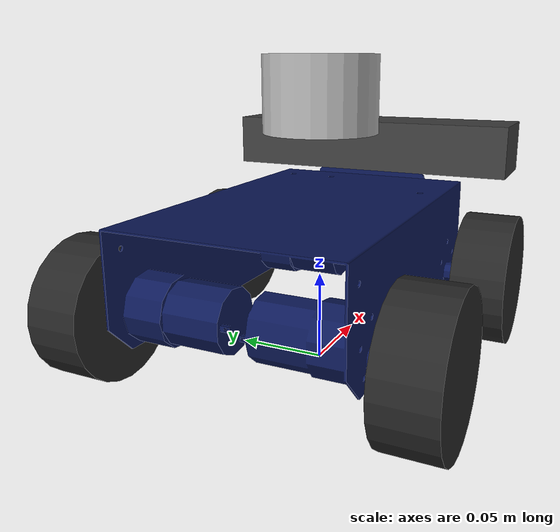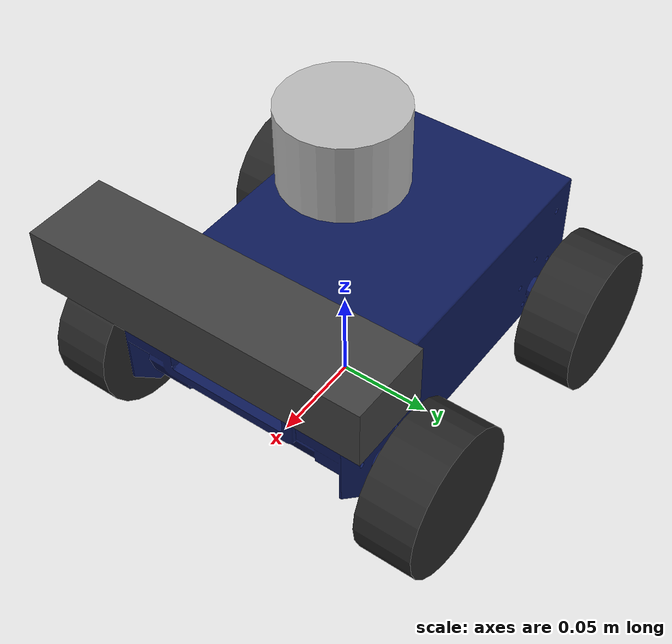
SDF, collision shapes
<sdf version='1.9'>
  <model name='axioma_v2'>

    <link name='base_link'>

      <inertial>
        <pose>0 0 0 0 -0 0</pose>
        <mass>5.0</mass>
        <inertia>
          <ixx>0.1135</ixx>
          <ixy>0</ixy>
          <ixz>0</ixz>
          <iyy>0.426</iyy>
          <iyz>0</iyz>
          <izz>0.5205</izz>
        </inertia>
      </inertial>
      <collision name='base_link_collision'>
        <pose>0 0 0 0 -0 0</pose>
        <geometry>
          <mesh>
            <scale>1 1 1</scale>
            <uri>model://axioma_v2/meshes/collision/chasis.dae</uri>
          </mesh>
        </geometry>
      </collision>
      <visual name='base_link_visual'>
        <pose>0 0 0 0 -0 0</pose>
        <geometry>
          <mesh>
            <scale>1 1 1</scale>
            <uri>model://axioma_v2/meshes/visual/chasis.stl</uri>
          </mesh>
        </geometry>
        <material>
          <diffuse>0.05 0.1 0.35 1</diffuse>
          <ambient>0.02 0.05 0.15 1</ambient>
          <specular>0.3 0.3 0.4 1</specular>
          <emissive>0 0 0 1</emissive>
        </material>
      </visual>
    </link>

    <!-- ==================== WHEEL 1 (front-left) ==================== -->
    <joint name='base_to_wheel1' type='revolute'>
      <pose relative_to='base_link'>0.06442 0.07385 0.04068 3.141516 -0 3.141516</pose>
      <parent>base_link</parent>
      <child>wheel_1</child>
      <axis>
        <xyz>0 1 0</xyz>
        <limit>
          <lower>-1e+16</lower>
          <upper>1e+16</upper>
        </limit>
      </axis>
    </joint>
    <link name='wheel_1'>
      <pose relative_to='base_to_wheel1'>0 0 0 0 -0 0</pose>
      <inertial>
        <pose>0 0 0 0 -0 0</pose>
        <mass>0.1</mass>
        <inertia>
          <ixx>0.0029</ixx>
          <ixy>0</ixy>
          <ixz>0</ixz>
          <iyy>0.0029</iyy>
          <iyz>0</iyz>
          <izz>0.0056</izz>
        </inertia>
      </inertial>
      <collision name='wheel_1_collision'>
        <pose>0 0.02 0 -1.5707 -0 0</pose>
        <geometry>
          <cylinder>
            <radius>0.0381</radius>
            <length>0.03</length>
          </cylinder>
        </geometry>
        <surface>
          <friction>
            <ode>
              <fdir1>0 0 1</fdir1>
              <mu>0.05</mu>
              <mu2>1.0</mu2>
              <slip1>0</slip1>
              <slip2>0</slip2>
            </ode>
          </friction>
          <contact>
            <ode>
              <soft_cfm>0</soft_cfm>
              <soft_erp>0.2</soft_erp>
              <kp>1e+13</kp>
              <kd>1</kd>
              <max_vel>0.01</max_vel>
              <min_depth>0.01</min_depth>
            </ode>
          </contact>
        </surface>
      </collision>
      <visual name='wheel_1_visual'>
        <pose>0 0 0 0 -0 0</pose>
        <geometry>
          <mesh>
            <scale>1 1 1</scale>
            <uri>model://axioma_v2/meshes/visual/llanta.stl</uri>
          </mesh>
        </geometry>
        <material>
          <diffuse>0.15 0.15 0.15 1</diffuse>
          <ambient>0.05 0.05 0.05 1</ambient>
          <specular>0.2 0.2 0.2 1</specular>
          <emissive>0 0 0 1</emissive>
        </material>
      </visual>
    </link>

    <!-- ==================== WHEEL 2 (rear-left) ==================== -->
    <joint name='base_to_wheel2' type='revolute'>
      <pose relative_to='base_link'>-0.071224 0.07385 0.04068 3.141516 -0 3.141516</pose>
      <parent>base_link</parent>
      <child>wheel_2</child>
      <axis>
        <xyz>0 1 0</xyz>
        <limit>
          <lower>-1e+16</lower>
          <upper>1e+16</upper>
        </limit>
      </axis>
    </joint>
    <link name='wheel_2'>
      <pose relative_to='base_to_wheel2'>0 0 0 0 -0 0</pose>
      <inertial>
        <pose>0 0 0 0 -0 0</pose>
        <mass>0.1</mass>
        <inertia>
          <ixx>0.0029</ixx>
          <ixy>0</ixy>
          <ixz>0</ixz>
          <iyy>0.0029</iyy>
          <iyz>0</iyz>
          <izz>0.0056</izz>
        </inertia>
      </inertial>
      <collision name='wheel_2_collision'>
        <pose>0 0.02 0 -1.5707 -0 0</pose>
        <geometry>
          <cylinder>
            <radius>0.0381</radius>
            <length>0.03</length>
          </cylinder>
        </geometry>
        <surface>
          <friction>
            <ode>
              <fdir1>0 0 1</fdir1>
              <mu>0.05</mu>
              <mu2>1.0</mu2>
              <slip1>0</slip1>
              <slip2>0</slip2>
            </ode>
          </friction>
          <contact>
            <ode>
              <soft_cfm>0</soft_cfm>
              <soft_erp>0.2</soft_erp>
              <kp>1e+13</kp>
              <kd>1</kd>
              <max_vel>0.01</max_vel>
              <min_depth>0.01</min_depth>
            </ode>
          </contact>
        </surface>
      </collision>
      <visual name='wheel_2_visual'>
        <pose>0 0 0 0 -0 0</pose>
        <geometry>
          <mesh>
            <scale>1 1 1</scale>
            <uri>model://axioma_v2/meshes/visual/llanta.stl</uri>
          </mesh>
        </geometry>
        <material>
          <diffuse>0.15 0.15 0.15 1</diffuse>
          <ambient>0.05 0.05 0.05 1</ambient>
          <specular>0.2 0.2 0.2 1</specular>
          <emissive>0 0 0 1</emissive>
        </material>
      </visual>
    </link>

    <!-- ==================== WHEEL 3 (rear-right) ==================== -->
    <joint name='base_to_wheel3' type='revolute'>
      <pose relative_to='base_link'>-0.071224 -0.0625 0.04068 0 0 3.141592</pose>
      <parent>base_link</parent>
      <child>wheel_3</child>
      <axis>
        <xyz>0 -1 0</xyz>
        <limit>
          <lower>-1e+16</lower>
          <upper>1e+16</upper>
        </limit>
      </axis>
    </joint>
    <link name='wheel_3'>
      <pose relative_to='base_to_wheel3'>0 0 0 0 -0 0</pose>
      <inertial>
        <pose>0 0 0 0 -0 0</pose>
        <mass>0.1</mass>
        <inertia>
          <ixx>0.0029</ixx>
          <ixy>0</ixy>
          <ixz>0</ixz>
          <iyy>0.0029</iyy>
          <iyz>0</iyz>
          <izz>0.0056</izz>
        </inertia>
      </inertial>
      <collision name='wheel_3_collision'>
        <pose>0 0.02 0 -1.5707 -0 0</pose>
        <geometry>
          <cylinder>
            <radius>0.0381</radius>
            <length>0.03</length>
          </cylinder>
        </geometry>
        <surface>
          <friction>
            <ode>
              <fdir1>0 0 1</fdir1>
              <mu>0.05</mu>
              <mu2>1.0</mu2>
              <slip1>0</slip1>
              <slip2>0</slip2>
            </ode>
          </friction>
          <contact>
            <ode>
              <soft_cfm>0</soft_cfm>
              <soft_erp>0.2</soft_erp>
              <kp>1e+13</kp>
              <kd>1</kd>
              <max_vel>0.01</max_vel>
              <min_depth>0.01</min_depth>
            </ode>
          </contact>
        </surface>
      </collision>
      <visual name='wheel_3_visual'>
        <pose>0 0 0 0 -0 0</pose>
        <geometry>
          <mesh>
            <scale>1 1 1</scale>
            <uri>model://axioma_v2/meshes/visual/llanta.stl</uri>
          </mesh>
        </geometry>
        <material>
          <diffuse>0.15 0.15 0.15 1</diffuse>
          <ambient>0.05 0.05 0.05 1</ambient>
          <specular>0.2 0.2 0.2 1</specular>
          <emissive>0 0 0 1</emissive>
        </material>
      </visual>
    </link>

    <!-- ==================== WHEEL 4 (front-right) ==================== -->
    <joint name='base_to_wheel4' type='revolute'>
      <pose relative_to='base_link'>0.064423 -0.0625 0.04068 0 0 3.141592</pose>
      <parent>base_link</parent>
      <child>wheel_4</child>
      <axis>
        <xyz>0 -1 0</xyz>
        <limit>
          <lower>-1e+16</lower>
          <upper>1e+16</upper>
        </limit>
      </axis>
    </joint>
    <link name='wheel_4'>
      <pose relative_to='base_to_wheel4'>0 0 0 0 -0 0</pose>
      <inertial>
        <pose>0 0 0 0 -0 0</pose>
        <mass>0.1</mass>
        <inertia>
          <ixx>0.0029</ixx>
          <ixy>0</ixy>
          <ixz>0</ixz>
          <iyy>0.0029</iyy>
          <iyz>0</iyz>
          <izz>0.0056</izz>
        </inertia>
      </inertial>
      <collision name='wheel_4_collision'>
        <pose>0 0.02 0 -1.5707 -0 0</pose>
        <geometry>
          <cylinder>
            <radius>0.0381</radius>
            <length>0.03</length>
          </cylinder>
        </geometry>
        <surface>
          <friction>
            <ode>
              <fdir1>0 0 1</fdir1>
              <mu>0.05</mu>
              <mu2>1.0</mu2>
              <slip1>0</slip1>
              <slip2>0</slip2>
            </ode>
          </friction>
          <contact>
            <ode>
              <soft_cfm>0</soft_cfm>
              <soft_erp>0.2</soft_erp>
              <kp>1e+13</kp>
              <kd>1</kd>
              <max_vel>0.01</max_vel>
              <min_depth>0.01</min_depth>
            </ode>
          </contact>
        </surface>
      </collision>
      <visual name='wheel_4_visual'>
        <pose>0 0 0 0 -0 0</pose>
        <geometry>
          <mesh>
            <scale>1 1 1</scale>
            <uri>model://axioma_v2/meshes/visual/llanta.stl</uri>
          </mesh>
        </geometry>
        <material>
          <diffuse>0.15 0.15 0.15 1</diffuse>
          <ambient>0.05 0.05 0.05 1</ambient>
          <specular>0.2 0.2 0.2 1</specular>
          <emissive>0 0 0 1</emissive>
        </material>
      </visual>
    </link>

    <!-- ==================== LIDAR SENSOR ==================== -->
    <link name="base_scan">
      <pose>0 0 0.15 0 0 0</pose>
      <inertial>
        <inertia>
          <ixx>0.001</ixx>
          <ixy>0.000</ixy>
          <ixz>0.000</ixz>
          <iyy>0.001</iyy>
          <iyz>0.000</iyz>
          <izz>0.001</izz>
        </inertia>
        <mass>0.125</mass>
      </inertial>
      <collision name="lidar_sensor_collision">
        <geometry>
          <cylinder>
            <radius>0.031</radius>
            <length>0.041</length>
          </cylinder>
        </geometry>
      </collision>
      <visual name="lidar_sensor_visual">
        <geometry>
          <cylinder>
            <radius>0.031</radius>
            <length>0.041</length>
          </cylinder>
        </geometry>
      </visual>
      <sensor name="ydlidar_x3_pro" type="gpu_lidar">
        <pose>0 0 0 0 0 0</pose>
        <always_on>true</always_on>
        <visualize>true</visualize>
        <update_rate>10</update_rate>
        <topic>scan</topic>
        <gz_frame_id>base_scan</gz_frame_id>
        <lidar>
          <scan>
            <horizontal>
              <samples>400</samples>
              <resolution>1</resolution>
              <min_angle>-3.141593</min_angle>
              <max_angle>3.125885</max_angle>
            </horizontal>
          </scan>
          <range>
            <min>0.120000</min>
            <max>8.0</max>
            <resolution>0.015000</resolution>
          </range>
          <noise>
            <type>gaussian</type>
            <mean>0.0</mean>
            <stddev>0.015</stddev>
          </noise>
        </lidar>
      </sensor>
    </link>

    <joint name="lidar_joint" type="fixed">
      <parent>base_link</parent>
      <child>base_scan</child>
    </joint>

    <!-- ==================== IMU ==================== -->

    <link name="imu_link">
      <pose>0 0 0.12 0 0 0</pose>
      <inertial>
        <mass>0.01</mass>
        <inertia>
          <ixx>0.0001</ixx>
          <ixy>0</ixy>
          <ixz>0</ixz>
          <iyy>0.0001</iyy>
          <iyz>0</iyz>
          <izz>0.0001</izz>
        </inertia>
      </inertial>
      <sensor name="axioma_imu" type="imu">
        <pose>0 0 0 0 0 0</pose>
        <always_on>true</always_on>
        <update_rate>100</update_rate>
        <topic>imu</topic>
        <gz_frame_id>imu_link</gz_frame_id>
        <imu>
          <angular_velocity>
            <x><noise type="gaussian"><mean>0.0</mean><stddev>8.7e-4</stddev><bias_mean>7.5e-6</bias_mean><bias_stddev>8.0e-7</bias_stddev></noise></x>
            <y><noise type="gaussian"><mean>0.0</mean><stddev>8.7e-4</stddev><bias_mean>7.5e-6</bias_mean><bias_stddev>8.0e-7</bias_stddev></noise></y>
            <z><noise type="gaussian"><mean>0.0</mean><stddev>8.7e-4</stddev><bias_mean>7.5e-6</bias_mean><bias_stddev>8.0e-7</bias_stddev></noise></z>
          </angular_velocity>
          <linear_acceleration>
            <x><noise type="gaussian"><mean>0.0</mean><stddev>3.9e-2</stddev><bias_mean>0.1</bias_mean><bias_stddev>1.0e-3</bias_stddev></noise></x>
            <y><noise type="gaussian"><mean>0.0</mean><stddev>3.9e-2</stddev><bias_mean>0.1</bias_mean><bias_stddev>1.0e-3</bias_stddev></noise></y>
            <z><noise type="gaussian"><mean>0.0</mean><stddev>3.9e-2</stddev><bias_mean>0.1</bias_mean><bias_stddev>1.0e-3</bias_stddev></noise></z>
          </linear_acceleration>
        </imu>
      </sensor>
    </link>

    <joint name="imu_joint" type="fixed">
      <parent>base_link</parent>
      <child>imu_link</child>
    </joint>

    <!-- ==================== ZED 2i ==================== -->

    <link name="zed2i_camera_center">
      <pose>0.098 0 0.115 0 0 0</pose>
      <inertial>
        <mass>0.166</mass>
        <inertia>
          <ixx>0.000438</ixx>
          <ixy>0</ixy>
          <ixz>0</ixz>
          <iyy>0.000039</iyy>
          <iyz>0</iyz>
          <izz>0.000451</izz>
        </inertia>
      </inertial>
      <collision name="zed2i_collision">
        <pose>-0.01 0 0 0 0 0</pose>
        <geometry>
          <box>
            <size>0.0431 0.1753 0.0303</size>
          </box>
        </geometry>
      </collision>
      <visual name="zed2i_visual">
        <pose>-0.01 0 0 0 0 0</pose>
        <geometry>
          <mesh>
            <scale>1 1 1</scale>
            <uri>model://axioma_v2/meshes/visual/zed2i.stl</uri>
          </mesh>
        </geometry>
        <material>
          <diffuse>0.25 0.25 0.25 1</diffuse>
          <ambient>0.08 0.08 0.08 1</ambient>
          <specular>0.3 0.3 0.3 1</specular>
          <emissive>0 0 0 1</emissive>
        </material>
      </visual>
      <sensor name="zed2i" type="rgbd_camera">
        <pose>-0.01 0.06 0 0 0 0</pose>
        <always_on>true</always_on>
        <visualize>false</visualize>
        <update_rate>15</update_rate>
        <topic>zed2i</topic>
        <gz_frame_id>zed2i_left_camera_frame_optical</gz_frame_id>
        <camera>
          <horizontal_fov>1.919862</horizontal_fov>
          <image>
            <width>640</width>
            <height>360</height>
            <format>R8G8B8</format>
          </image>
          <clip>
            <near>0.3</near>
            <far>20.0</far>
          </clip>
          <depth_camera>
            <clip>
              <near>0.3</near>
              <far>20.0</far>
            </clip>
          </depth_camera>
          <noise>
            <type>gaussian</type>
            <mean>0.0</mean>
            <stddev>0.007</stddev>
          </noise>
        </camera>
      </sensor>
    </link>

    <joint name="zed2i_mount_joint" type="fixed">
      <parent>base_link</parent>
      <child>zed2i_camera_center</child>
    </joint>

    <!-- ==================== GZ-SIM PLUGINS ==================== -->

    <!-- Differential drive (skid-steer 4WD) -->
    <plugin filename="gz-sim-diff-drive-system" name="gz::sim::systems::DiffDrive">
      <left_joint>base_to_wheel1</left_joint>
      <left_joint>base_to_wheel2</left_joint>
      <right_joint>base_to_wheel4</right_joint>
      <right_joint>base_to_wheel3</right_joint>
      <wheel_separation>0.1679</wheel_separation>
      <wheel_radius>0.0381</wheel_radius>
      <min_linear_velocity>-0.26</min_linear_velocity>
      <max_linear_velocity>0.26</max_linear_velocity>
      <min_angular_velocity>-1.0</min_angular_velocity>
      <max_angular_velocity>1.0</max_angular_velocity>
      <min_linear_acceleration>-1.0</min_linear_acceleration>
      <max_linear_acceleration>1.0</max_linear_acceleration>
      <min_angular_acceleration>-3.2</min_angular_acceleration>
      <max_angular_acceleration>3.2</max_angular_acceleration>
      <odom_publish_frequency>50</odom_publish_frequency>
      <topic>cmd_vel</topic>
      <odom_topic>odom</odom_topic>
      <frame_id>odom</frame_id>
      <child_frame_id>base_footprint</child_frame_id>
      <tf_topic>tf</tf_topic>
    </plugin>

    <!-- Joint state publisher -->
    <plugin filename="gz-sim-joint-state-publisher-system" name="gz::sim::systems::JointStatePublisher">
      <topic>joint_states</topic>
      <update_rate>20</update_rate>
      <joint_name>base_to_wheel1</joint_name>
      <joint_name>base_to_wheel2</joint_name>
      <joint_name>base_to_wheel3</joint_name>
      <joint_name>base_to_wheel4</joint_name>
    </plugin>

  </model>
</sdf>
